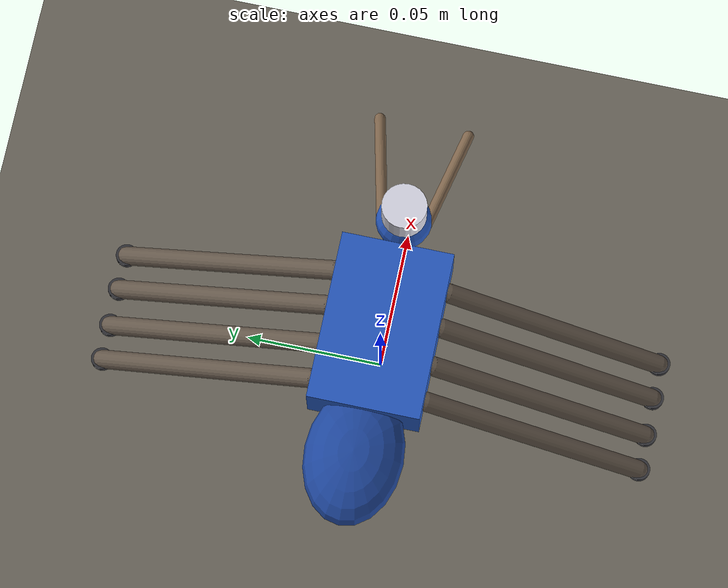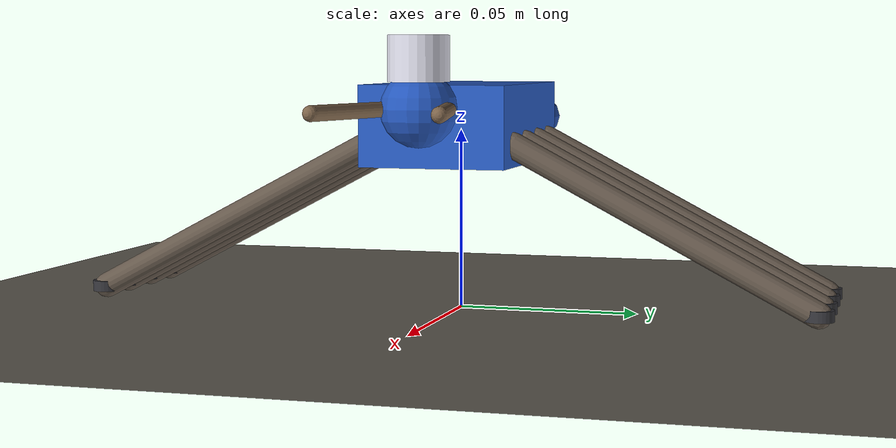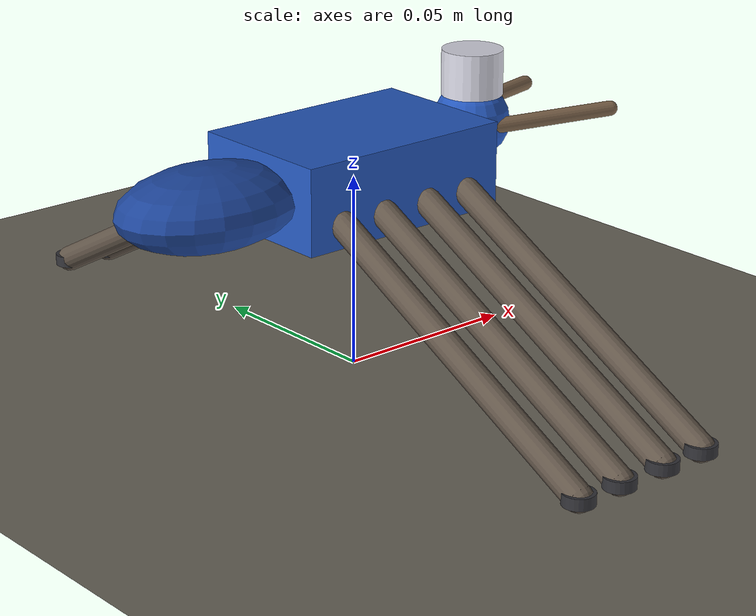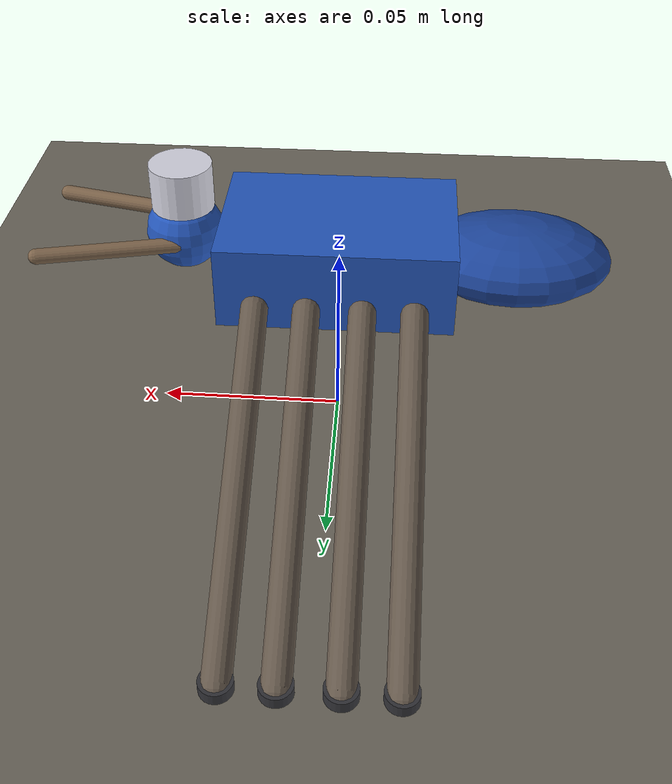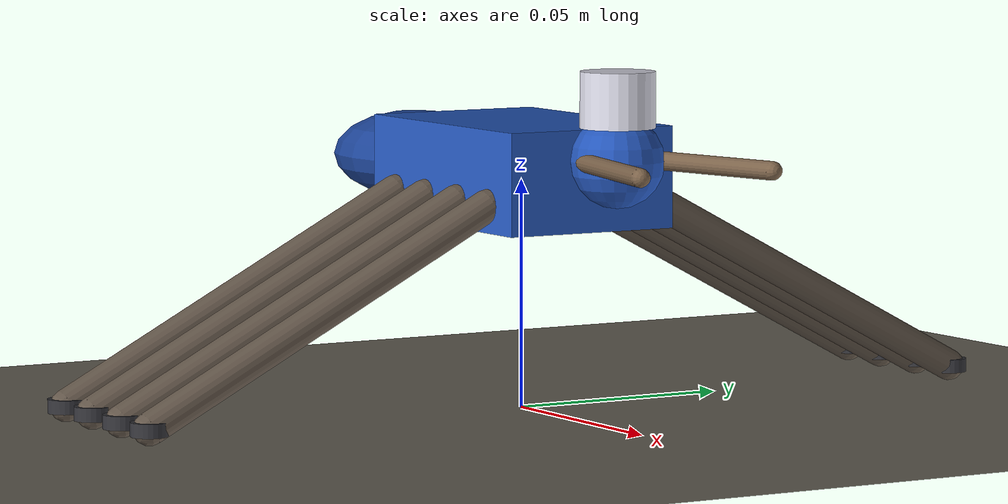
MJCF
<mujoco model="astraant_taskmaster">

  <compiler angle="degree" coordinate="local"/>
  <option timestep="0.001" gravity="0 0 -9.81">
    <flag contact="enable"/>
  </option>

  <default>
    <joint damping="0.001" armature="0.00001" limited="true"/>
    <geom condim="3" friction="0.8 0.005 0.001" solref="0.02 1"/>
  </default>

  <asset>
    <material name="body_blue" rgba="0.15 0.35 0.75 1"/>
    <material name="abdomen_color" rgba="0.12 0.28 0.62 1"/>
    <material name="sensor_dome" rgba="0.85 0.85 0.90 1"/>
    <material name="leg_brown" rgba="0.40 0.35 0.30 1"/>
    <material name="foot_pad_mat" rgba="0.20 0.20 0.22 1"/>
    <material name="mandible_color" rgba="0.50 0.40 0.30 1"/>
    <material name="regolith" rgba="0.42 0.40 0.36 1"/>
  </asset>

  <worldbody>
    <light diffuse="0.9 0.9 0.85" dir="-0.2 -0.3 -1" pos="0.2 0.3 0.5"/>
    <light diffuse="0.3 0.3 0.35" dir="0.5 0.5 -0.3" pos="-0.3 -0.3 0.3"/>

    <geom name="ground" type="plane" size="0.5 0.5 0.01"
          material="regolith" friction="0.5 0.01 0.001"/>

    <!-- Torso: 140mm body, 200mm leg span, 35mm clearance -->
    <body name="torso" pos="0 0 0.052">
      <freejoint name="root"/>
      <camera name="track" pos="0 -0.3 0.15" xyaxes="1 0 0 0 0.5 1" mode="track"/>

      <!-- Thorax: 60x40x22mm -->
      <geom name="thorax" type="box" size="0.030 0.020 0.011"
            mass="0.068" material="body_blue"/>

      <!-- Abdomen: 50x35x20mm -->
      <geom name="abdomen" type="ellipsoid" size="0.025 0.0175 0.010"
            pos="-0.045 0 0" mass="0.030" material="abdomen_color"/>

      <!-- Head: 20mm sphere -->
      <geom name="head" type="sphere" size="0.010"
            pos="0.040 0 0.005" mass="0.010" material="body_blue"/>

      <!-- Sensor dome on head -->
      <geom name="sensor_dome" type="cylinder" size="0.008 0.006"
            pos="0.040 0 0.018" mass="0.010" material="sensor_dome"/>

      <!-- 8 LEGS: 4 pairs, same as worker 8-leg layout -->
      <!-- Pair 1: front -->
      <body name="leg_0_FL" pos="0.020 0.020 -0.005">
        <joint name="j_leg_0" type="hinge" axis="0 -1 0" range="-30 30"/>
        <geom name="leg_0" type="capsule" fromto="0 0 0  0 0.080 -0.042"
              size="0.0035" mass="0.003" material="leg_brown"/>
        <body name="foot_0" pos="0 0.080 -0.042">
          <geom name="foot_0_pad" type="cylinder" size="0.004 0.0015"
                mass="0.0011" material="foot_pad_mat"
                friction="5.0 0.02 0.005" condim="6" solref="0.01 1"/>
        </body>
      </body>
      <body name="leg_1_FR" pos="0.020 -0.020 -0.005">
        <joint name="j_leg_1" type="hinge" axis="0 -1 0" range="-30 30"/>
        <geom name="leg_1" type="capsule" fromto="0 0 0  0 -0.080 -0.042"
              size="0.0035" mass="0.003" material="leg_brown"/>
        <body name="foot_1" pos="0 -0.080 -0.042">
          <geom name="foot_1_pad" type="cylinder" size="0.004 0.0015"
                mass="0.0011" material="foot_pad_mat"
                friction="5.0 0.02 0.005" condim="6" solref="0.01 1"/>
        </body>
      </body>

      <!-- Pair 2 -->
      <body name="leg_2_M1L" pos="0.007 0.020 -0.005">
        <joint name="j_leg_2" type="hinge" axis="0 -1 0" range="-30 30"/>
        <geom name="leg_2" type="capsule" fromto="0 0 0  0 0.080 -0.042"
              size="0.0035" mass="0.003" material="leg_brown"/>
        <body name="foot_2" pos="0 0.080 -0.042">
          <geom name="foot_2_pad" type="cylinder" size="0.004 0.0015"
                mass="0.0011" material="foot_pad_mat"
                friction="5.0 0.02 0.005" condim="6" solref="0.01 1"/>
        </body>
      </body>
      <body name="leg_3_M1R" pos="0.007 -0.020 -0.005">
        <joint name="j_leg_3" type="hinge" axis="0 -1 0" range="-30 30"/>
        <geom name="leg_3" type="capsule" fromto="0 0 0  0 -0.080 -0.042"
              size="0.0035" mass="0.003" material="leg_brown"/>
        <body name="foot_3" pos="0 -0.080 -0.042">
          <geom name="foot_3_pad" type="cylinder" size="0.004 0.0015"
                mass="0.0011" material="foot_pad_mat"
                friction="5.0 0.02 0.005" condim="6" solref="0.01 1"/>
        </body>
      </body>

      <!-- Pair 3 -->
      <body name="leg_4_M2L" pos="-0.007 0.020 -0.005">
        <joint name="j_leg_4" type="hinge" axis="0 -1 0" range="-30 30"/>
        <geom name="leg_4" type="capsule" fromto="0 0 0  0 0.080 -0.042"
              size="0.0035" mass="0.003" material="leg_brown"/>
        <body name="foot_4" pos="0 0.080 -0.042">
          <geom name="foot_4_pad" type="cylinder" size="0.004 0.0015"
                mass="0.0011" material="foot_pad_mat"
                friction="5.0 0.02 0.005" condim="6" solref="0.01 1"/>
        </body>
      </body>
      <body name="leg_5_M2R" pos="-0.007 -0.020 -0.005">
        <joint name="j_leg_5" type="hinge" axis="0 -1 0" range="-30 30"/>
        <geom name="leg_5" type="capsule" fromto="0 0 0  0 -0.080 -0.042"
              size="0.0035" mass="0.003" material="leg_brown"/>
        <body name="foot_5" pos="0 -0.080 -0.042">
          <geom name="foot_5_pad" type="cylinder" size="0.004 0.0015"
                mass="0.0011" material="foot_pad_mat"
                friction="5.0 0.02 0.005" condim="6" solref="0.01 1"/>
        </body>
      </body>

      <!-- Pair 4: rear -->
      <body name="leg_6_RL" pos="-0.020 0.020 -0.005">
        <joint name="j_leg_6" type="hinge" axis="0 -1 0" range="-30 30"/>
        <geom name="leg_6" type="capsule" fromto="0 0 0  0 0.080 -0.042"
              size="0.0035" mass="0.003" material="leg_brown"/>
        <body name="foot_6" pos="0 0.080 -0.042">
          <geom name="foot_6_pad" type="cylinder" size="0.004 0.0015"
                mass="0.0011" material="foot_pad_mat"
                friction="5.0 0.02 0.005" condim="6" solref="0.01 1"/>
        </body>
      </body>
      <body name="leg_7_RR" pos="-0.020 -0.020 -0.005">
        <joint name="j_leg_7" type="hinge" axis="0 -1 0" range="-30 30"/>
        <geom name="leg_7" type="capsule" fromto="0 0 0  0 -0.080 -0.042"
              size="0.0035" mass="0.003" material="leg_brown"/>
        <body name="foot_7" pos="0 -0.080 -0.042">
          <geom name="foot_7_pad" type="cylinder" size="0.004 0.0015"
                mass="0.0011" material="foot_pad_mat"
                friction="5.0 0.02 0.005" condim="6" solref="0.01 1"/>
        </body>
      </body>

      <!-- Mandibles with permanent sensor cluster -->
      <body name="mandible_L" pos="0.040 0.008 0.005">
        <joint name="j_mandible_L" type="hinge" axis="0 0 1" range="-30 30"/>
        <geom name="mandible_L_arm" type="capsule" fromto="0 0 0  0.035 0.008 0"
              size="0.002" mass="0.003" material="mandible_color"/>
      </body>
      <body name="mandible_R" pos="0.040 -0.008 0.005">
        <joint name="j_mandible_R" type="hinge" axis="0 0 -1" range="-30 30"/>
        <geom name="mandible_R_arm" type="capsule" fromto="0 0 0  0.035 -0.008 0"
              size="0.002" mass="0.003" material="mandible_color"/>
      </body>
    </body>
  </worldbody>

  <actuator>
    <!-- Same SG90 servos as worker: 0.176 N*m stall torque -->
    <position name="servo_leg_0" joint="j_leg_0" kp="5.0" kv="0.01" ctrlrange="-30 30" forcerange="-0.176 0.176"/>
    <position name="servo_leg_1" joint="j_leg_1" kp="5.0" kv="0.01" ctrlrange="-30 30" forcerange="-0.176 0.176"/>
    <position name="servo_leg_2" joint="j_leg_2" kp="5.0" kv="0.01" ctrlrange="-30 30" forcerange="-0.176 0.176"/>
    <position name="servo_leg_3" joint="j_leg_3" kp="5.0" kv="0.01" ctrlrange="-30 30" forcerange="-0.176 0.176"/>
    <position name="servo_leg_4" joint="j_leg_4" kp="5.0" kv="0.01" ctrlrange="-30 30" forcerange="-0.176 0.176"/>
    <position name="servo_leg_5" joint="j_leg_5" kp="5.0" kv="0.01" ctrlrange="-30 30" forcerange="-0.176 0.176"/>
    <position name="servo_leg_6" joint="j_leg_6" kp="5.0" kv="0.01" ctrlrange="-30 30" forcerange="-0.176 0.176"/>
    <position name="servo_leg_7" joint="j_leg_7" kp="5.0" kv="0.01" ctrlrange="-30 30" forcerange="-0.176 0.176"/>
    <position name="servo_mandible_L" joint="j_mandible_L" kp="3.0" kv="0.005" ctrlrange="-30 30" forcerange="-0.098 0.098"/>
    <position name="servo_mandible_R" joint="j_mandible_R" kp="3.0" kv="0.005" ctrlrange="-30 30" forcerange="-0.098 0.098"/>
  </actuator>

  <sensor>
    <framepos name="torso_pos" objtype="body" objname="torso"/>
    <framequat name="torso_quat" objtype="body" objname="torso"/>
    <framelinvel name="torso_linvel" objtype="body" objname="torso"/>
  </sensor>

</mujoco>
